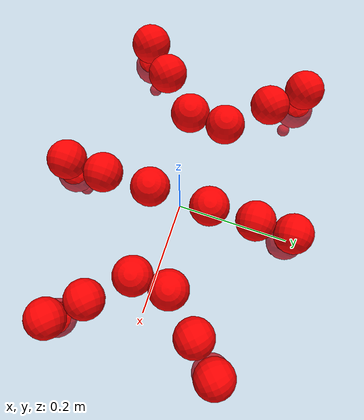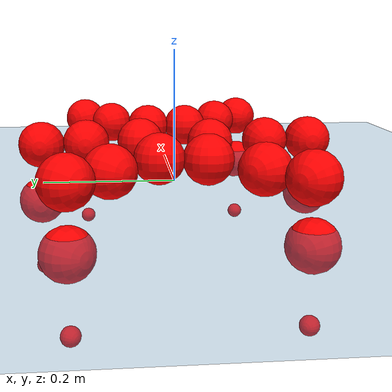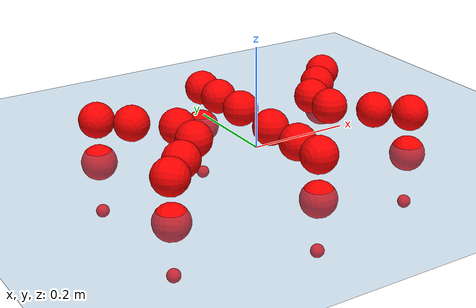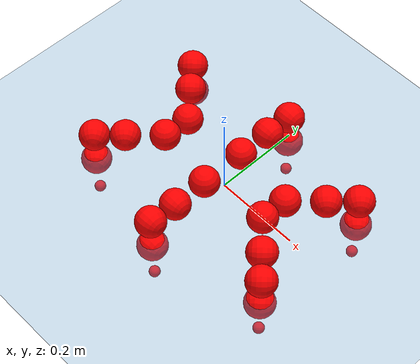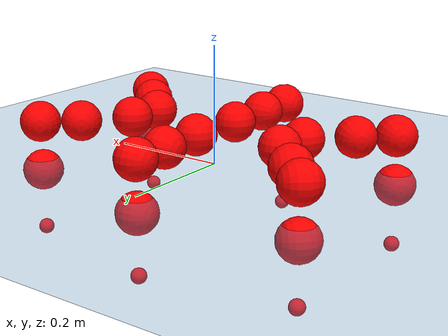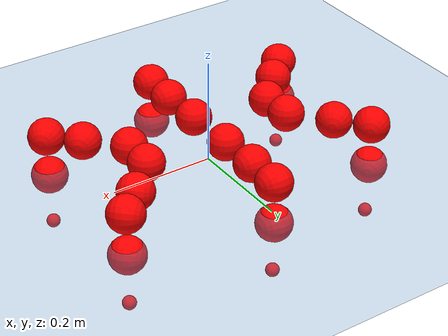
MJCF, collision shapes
<mujoco model="Golem">
  <compiler angle="radian" assetdir="assets" balanceinertia="true" inertiafromgeom="false"/>

  <option timestep="0.005" density="1.2" viscosity="2e-05"/>

  <size nkey="1"/>

  <visual>
    <quality shadowsize="8192"/>
    <map shadowclip="0.5"/>
  </visual>

  <default>
    <default class="/">
      <joint armature="0.01" damping="0.01" frictionloss="0.01"/>
      <geom contype="0" conaffinity="0" group="1" solref="-1000 -80"/>
      <site size="0.01 0.005 0.005" group="5"/>
      <general forcelimited="true" biastype="affine" gainprm="25" biasprm="0 -25 -0.5"/>
      <default class="visual">
        <geom type="mesh" group="2"/>
      </default>
      <default class="collision">
        <geom group="3"/>
      </default>
      <default class="foot">
        <geom size="0.01 0 0" condim="6" group="4" priority="1" solimp="0.015 1 0.01"/>
      </default>
      <default class="reward_collision_sphere">
        <geom group="5" rgba="1 0 0 1"/>
      </default>
    </default>
  </default>

  <asset>
    <texture type="skybox" colorspace="auto" name="//unnamed_texture_0" builtin="gradient" rgb1="0.95 0.95 0.95" rgb2="0.95 0.95 0.95" width="100" height="600"/>
    <texture type="2d" colorspace="auto" name="texplane" builtin="checker" rgb1="0.345 0.575 0.748" rgb2="0.345 0.575 0.748" markrgb="1 1 1" width="512" height="512"/>
    <material name="MatPlane" class="/" texture="texplane" texuniform="true" texrepeat="2 2" specular="0.9"/>
    <mesh name="body" class="/" file="body.stl" scale="0.001 0.001 0.001"/>
    <mesh name="coxa" class="/" file="coxa.stl" scale="0.001 0.001 0.001"/>
    <mesh name="femur" class="/" file="femur.stl" scale="0.001 0.001 0.001"/>
    <mesh name="tibia" class="/" file="tibia.stl" scale="0.001 0.001 0.001"/>
    <mesh name="tarsus" class="/" file="tarsus.stl" scale="0.001 0.001 0.001"/>
  </asset>

  <worldbody>
    <geom name="floor" class="/" size="100 100 0.125" type="plane" group="0" material="MatPlane"/>
    <light name="toplight_shadow" class="/" pos="0 0 5" dir="0.0990148 0.0990148 -0.990148" type="directional" ambient="0.04 0.04 0.04" diffuse="0.55 0.55 0.55" specular="0.12 0.12 0.12"/>
    <light name="toplight_fill" class="/" pos="0 0 5" dir="0.0990148 0.0990148 -0.990148" type="directional" castshadow="false" ambient="0.04 0.04 0.04" diffuse="0.3 0.3 0.3" specular="0.08 0.08 0.08"/>
    <body name="trunk" pos="-0.000985261 -0.000304154 0.00046532" quat="0.999999 -0.00099504 -0.000180229 -0.000451012">
      <inertial pos="0.000737343 0.00218553 -0.000947095" quat="1 -0.000339482 0.000428214 0.000182766" mass="2.32566" diaginertia="0.00811439 0.00102809 0.0089727"/>
      <joint name="//unnamed_joint_0" type="free"/>
      <geom name="//unnamed_geom_1" class="/" pos="0 0 0.0630346" quat="1 0 0 0" type="mesh" rgba="0.9 0.9 0.9 1" mesh="body"/>
      <site name="imu" class="/" pos="0.126751 0.00809407 0.100536" size="0.0086214"/>
      <camera name="track" class="/" pos="0 -1.27153 0" quat="0.707107 0.707107 0 0" mode="trackcom"/>
      <camera name="ego_camera" class="/" pos="0.125546 0 0.0984916" quat="-0.5 -0.5 0.5 0.5"/>
      <body name="coxa_RR" pos="-0.172222 -0.0517801 0.063013" quat="0.382048 0.000628329 -0.000242238 -0.924142">
        <inertial pos="0.000336951 -0.000606851 -0.000400503" quat="0.999926 -0.004972 -0.0104605 0.00379196" mass="0.135246" diaginertia="0.00858915 0.00105168 0.00962338"/>
        <joint name="coxa_joint_RR" class="/" pos="0 0 0" axis="0.0016409 -0.00212951 -0.999996" range="-3.13816 3.09017" armature="0.00964728" damping="0.00791351" frictionloss="0.00858615"/>
        <geom name="//unnamed_geom_2" class="/" type="mesh" rgba="0.2 0.2 0.2 1" mesh="coxa"/>
        <geom name="//unnamed_geom_3" class="reward_collision_sphere" size="0.0344856" pos="-0.0289722 0 0"/>
        <body name="femur_RR" pos="0.0579254 0.00216623 -0.00151471" quat="0.499947 -0.500078 0.499784 0.50019">
          <inertial pos="0.00203744 -0.000931694 0.000338672" quat="0.999953 0.00162655 0.00835567 -0.00468763" mass="0.129707" diaginertia="0.00842705 0.0010449 0.00929105"/>
          <joint name="femur_joint_RR" class="/" pos="0 0 0" axis="-0.000371735 0.00185155 -0.999998" stiffness="0.000174071" range="-3.13965 3.13257" armature="0.00870482" damping="0.00500784" frictionloss="0.00827405"/>
          <geom name="//unnamed_geom_4" class="/" type="mesh" rgba="0.9 0.9 0.9 1" mesh="femur"/>
          <geom name="//unnamed_geom_5" class="reward_collision_sphere" size="0.0344856"/>
          <body name="tibia_RR" pos="0.000925352 -0.0673819 0.000652835" quat="9.41085e-06 1 1.88343e-05 -1.49466e-07">
            <inertial pos="-0.00110975 0.000535728 0.000426121" quat="0.999993 -0.000493681 -0.00368812 -0.000730818" mass="0.131559" diaginertia="0.00828008 0.00102769 0.0093749"/>
            <joint name="tibia_joint_RR" class="/" pos="0 0 0" axis="-0.00811655 0.00273421 0.999963" range="-3.12218 3.14065" armature="0.0086213" damping="0.00220904" frictionloss="0.00856623"/>
            <geom name="//unnamed_geom_6" class="/" type="mesh" rgba="0.2 0.2 0.2 1" mesh="tibia"/>
            <geom name="//unnamed_geom_7" class="reward_collision_sphere" size="0.0344856"/>
            <body name="tarsus_RR" pos="0.0837475 0.00198815 0.000192012" quat="1 2.01668e-05 -2.22909e-05 2.42537e-05">
              <inertial pos="0.0594912 0.00017671 0.000838429" quat="0.500715 0.49867 0.500208 0.500404" mass="0.131462" diaginertia="0.00866365 0.00105892 0.00956313"/>
              <joint name="tarsus_joint_RR" class="/" pos="0 0 0" axis="-0.00167336 0.00228533 0.999996" range="-3.13772 3.13948" armature="0.00868275" damping="0.0422412" frictionloss="0.00802743"/>
              <geom name="//unnamed_geom_8" class="/" type="mesh" rgba="0.9 0.9 0.9 1" mesh="tarsus"/>
              <geom name="foot_1" class="foot" size="0.00883511" pos="0.108163 0 0" quat="0 -0.707107 0 0.707107"/>
              <geom name="//unnamed_geom_10" class="reward_collision_sphere" size="0.0344856"/>
              <geom name="//unnamed_geom_11" class="reward_collision_sphere" size="0.0129321" pos="0.103817 0 0"/>
              <site name="foot_1" class="foot" pos="0.108163 0 0" quat="0 -0.707107 0 0.707107" size="0.0086214"/>
            </body>
          </body>
        </body>
      </body>
      <body name="coxa_RM" pos="-0.00244764 -0.0831916 0.0607824" quat="0.707068 0.000415646 -0.000373606 -0.707145">
        <inertial pos="-0.00176321 0.0005213 0.00107078" quat="1 9.75052e-05 0.000320815 -0.000432017" mass="0.131757" diaginertia="0.00867992 0.00105973 0.00952113"/>
        <joint name="coxa_joint_RM" class="/" pos="0 0 0" axis="-0.00180957 -0.00520792 -0.999985" range="-3.11294 3.13935" armature="0.00902993" damping="0.01216" frictionloss="0.00870944"/>
        <geom name="//unnamed_geom_12" class="/" type="mesh" rgba="0.2 0.2 0.2 1" mesh="coxa"/>
        <geom name="//unnamed_geom_13" class="reward_collision_sphere" size="0.0344856" pos="-0.0289722 0 0"/>
        <body name="femur_RM" pos="0.0560053 0.00173436 0.0007951" quat="0.499985 -0.499959 0.499955 0.500101">
          <inertial pos="0.000354517 -0.00019904 -0.000973104" quat="0.999932 0.00327987 0.00274638 0.0108816" mass="0.123337" diaginertia="0.00820361 0.00101139 0.00907293"/>
          <joint name="femur_joint_RM" class="/" pos="0 0 0" axis="0.000859616 -0.000678948 -0.999999" range="-3.18765 3.15843" armature="0.00885434" damping="0.00866614" frictionloss="0.00861546"/>
          <geom name="//unnamed_geom_14" class="/" type="mesh" rgba="0.9 0.9 0.9 1" mesh="femur"/>
          <geom name="//unnamed_geom_15" class="reward_collision_sphere" size="0.0344856"/>
          <body name="tibia_RM" pos="-0.000635838 -0.0668944 -0.00173036" quat="-0.000859402 0.999999 -8.1761e-05 0.00076774">
            <inertial pos="-0.000931635 -0.00104317 0.0010171" quat="0.999982 0.00150056 -0.00384995 -0.00425623" mass="0.127463" diaginertia="0.00833466 0.00100751 0.00893941"/>
            <joint name="tibia_joint_RM" class="/" pos="0 0 0" axis="6.00406e-06 0.0017147 0.999999" range="-3.13758 3.14322" armature="0.00859524" damping="0" frictionloss="0.00902019"/>
            <geom name="//unnamed_geom_16" class="/" type="mesh" rgba="0.2 0.2 0.2 1" mesh="tibia"/>
            <geom name="//unnamed_geom_17" class="reward_collision_sphere" size="0.0344856"/>
            <body name="tarsus_RM" pos="0.0855138 0.000413694 -0.000560462" quat="1 0.000103129 -0.0002983 0.00090651">
              <inertial pos="0.0582647 0.000346074 0.000272714" quat="0.497192 0.502404 0.497795 0.502584" mass="0.127322" diaginertia="0.0083935 0.00103127 0.00919627"/>
              <joint name="tarsus_joint_RM" class="/" pos="0 0 0" axis="-0.00593614 0.00623213 0.999963" range="-3.15559 3.18692" armature="0.00861905" damping="0.00714248" frictionloss="0.00758569"/>
              <geom name="//unnamed_geom_18" class="/" type="mesh" rgba="0.9 0.9 0.9 1" mesh="tarsus"/>
              <geom name="foot_2" class="foot" size="0.00828323" pos="0.108163 0 0" quat="0 -0.707107 0 0.707107"/>
              <geom name="//unnamed_geom_20" class="reward_collision_sphere" size="0.0344856"/>
              <geom name="//unnamed_geom_21" class="reward_collision_sphere" size="0.0129321" pos="0.103817 0 0"/>
              <site name="foot_2" class="foot" pos="0.108163 0 0" quat="0 -0.707107 0 0.707107" size="0.0086214"/>
            </body>
          </body>
        </body>
      </body>
      <body name="coxa_RF" pos="0.169832 -0.0512987 0.0631889" quat="0.924111 -0.000589315 0.000291439 -0.382123">
        <inertial pos="0.00223758 0.00215045 5.21564e-05" quat="1 -0.000674048 0.000236328 -0.000301425" mass="0.128075" diaginertia="0.00849459 0.00103572 0.00926245"/>
        <joint name="coxa_joint_RF" class="/" pos="0 0 0" axis="-0.000436228 -0.000494985 -1" range="-3.14992 3.09533" armature="0.00904926" damping="0.0142859" frictionloss="0.00871352"/>
        <geom name="//unnamed_geom_22" class="/" type="mesh" rgba="0.2 0.2 0.2 1" mesh="coxa"/>
        <geom name="//unnamed_geom_23" class="reward_collision_sphere" size="0.0344856" pos="-0.0289722 0 0"/>
        <body name="femur_RF" pos="0.0570649 -0.000501615 -0.000190211" quat="0.499633 -0.500613 0.499585 0.500169">
          <inertial pos="-0.00019513 -0.000330759 0.00243593" quat="0.999964 -0.00817776 0.000765963 0.00216041" mass="0.125149" diaginertia="0.00814224 0.00100785 0.00876057"/>
          <joint name="femur_joint_RF" class="/" pos="0 0 0" axis="-0.0119766 -0.000435314 -0.999928" range="-3.14849 3.13887" armature="0.00973888" damping="0.00863892" frictionloss="0.00913218"/>
          <geom name="//unnamed_geom_24" class="/" type="mesh" rgba="0.9 0.9 0.9 1" mesh="femur"/>
          <geom name="//unnamed_geom_25" class="reward_collision_sphere" size="0.0344856"/>
          <body name="tibia_RF" pos="0.000281933 -0.0684723 -0.000826238" quat="-0.000216941 1 7.15417e-05 -7.59118e-06">
            <inertial pos="7.78555e-05 0.000334861 0.000323618" quat="0.999978 -0.00396526 -0.00289442 -0.00446223" mass="0.126863" diaginertia="0.00824547 0.00101909 0.00939317"/>
            <joint name="tibia_joint_RF" class="/" pos="0 0 0" axis="-0.000812821 -0.00215563 0.999997" range="-3.13738 3.18105" armature="0.0087003" damping="0.00737378" frictionloss="0.00819063"/>
            <geom name="//unnamed_geom_26" class="/" type="mesh" rgba="0.2 0.2 0.2 1" mesh="tibia"/>
            <geom name="//unnamed_geom_27" class="reward_collision_sphere" size="0.0344856"/>
            <body name="tarsus_RF" pos="0.0836966 -0.000465761 0.00110495" quat="0.999999 0.00107757 0.000142944 -0.000346134">
              <inertial pos="0.0579569 -6.55846e-06 0.000121761" quat="0.500533 0.501665 0.498477 0.499319" mass="0.127908" diaginertia="0.00834117 0.00102818 0.00901717"/>
              <joint name="tarsus_joint_RF" class="/" pos="0 0 0" axis="0.00660566 0.00459691 0.999968" range="-3.13886 3.12788" armature="0.00858326" damping="0.0123074" frictionloss="0.00873849"/>
              <geom name="//unnamed_geom_28" class="/" type="mesh" rgba="0.9 0.9 0.9 1" mesh="tarsus"/>
              <geom name="foot_3" class="foot" size="0.00907007" pos="0.108163 0 0" quat="0 -0.707107 0 0.707107"/>
              <geom name="//unnamed_geom_30" class="reward_collision_sphere" size="0.0344856"/>
              <geom name="//unnamed_geom_31" class="reward_collision_sphere" size="0.0129321" pos="0.103817 0 0"/>
              <site name="foot_3" class="foot" pos="0.108163 0 0" quat="0 -0.707107 0 0.707107" size="0.0086214"/>
            </body>
          </body>
        </body>
      </body>
      <body name="coxa_LR" pos="-0.170264 0.0539262 0.0647358" quat="0.383358 -2.71323e-05 0.000516423 0.9236">
        <inertial pos="0.000757691 -0.000439468 -0.000527366" quat="1 -0.000231301 8.31732e-05 1.52618e-06" mass="0.129139" diaginertia="0.00822376 0.00104017 0.00899731"/>
        <joint name="coxa_joint_LR" class="/" pos="0 0 0" axis="0.00920501 -0.00890286 -0.999918" range="-3.10811 3.14018" armature="0.00886003" damping="0.00594414" frictionloss="0.00851023"/>
        <geom name="//unnamed_geom_32" class="/" type="mesh" rgba="0.2 0.2 0.2 1" mesh="coxa"/>
        <geom name="//unnamed_geom_33" class="reward_collision_sphere" size="0.0344856" pos="-0.0289722 0 0"/>
        <body name="femur_LR" pos="0.0602416 -0.00204645 -0.00211525" quat="0.499782 -0.499901 0.499901 0.500417">
          <inertial pos="-0.000609091 -0.000285169 -0.000649535" quat="0.999992 0.00376216 0.000254471 -0.00139862" mass="0.126645" diaginertia="0.0083676 0.00104062 0.0093001"/>
          <joint name="femur_joint_LR" class="/" pos="0 0 0" axis="-0.000454265 -0.00497528 0.999988" range="-3.18 3.17736" armature="0.00861257" damping="0" frictionloss="0.00906143"/>
          <geom name="//unnamed_geom_34" class="/" type="mesh" rgba="0.9 0.9 0.9 1" mesh="femur"/>
          <geom name="//unnamed_geom_35" class="reward_collision_sphere" size="0.0344856"/>
          <body name="tibia_LR" pos="0.000520005 -0.0695053 -0.00192281" quat="9.96864e-05 1 0.000404916 -0.000245857">
            <inertial pos="-0.00262495 0.00116332 -0.00195086" quat="1 0.000175064 -1.39194e-05 0.00011089" mass="0.128034" diaginertia="0.0083764 0.00106199 0.00920585"/>
            <joint name="tibia_joint_LR" class="/" pos="0 0 0" axis="-0.00102407 0.00176814 -0.999998" range="-3.09788 3.16502" armature="0.00875819" damping="0.0024565" frictionloss="0.00903279"/>
            <geom name="//unnamed_geom_36" class="/" type="mesh" rgba="0.2 0.2 0.2 1" mesh="tibia"/>
            <geom name="//unnamed_geom_37" class="reward_collision_sphere" size="0.0344856"/>
            <body name="tarsus_LR" pos="0.0866263 0.000808437 0.000446519" quat="1 -0.000111863 -0.000183611 -5.14268e-05">
              <inertial pos="0.0584086 -0.000157862 -0.000858096" quat="0.499242 0.499702 0.501937 0.499114" mass="0.132161" diaginertia="0.00860605 0.00107187 0.00948165"/>
              <joint name="tarsus_joint_LR" class="/" pos="0 0 0" axis="0.00513875 0.0111312 -0.999925" stiffness="0.00115208" range="-3.13629 3.11586" armature="0.00877468" damping="0.0266899" frictionloss="0.00914571"/>
              <geom name="//unnamed_geom_38" class="/" type="mesh" rgba="0.9 0.9 0.9 1" mesh="tarsus"/>
              <geom name="foot_4" class="foot" size="0.00821518" pos="0.108163 0 0" quat="0.707107 0 -0.707107 0"/>
              <geom name="//unnamed_geom_40" class="reward_collision_sphere" size="0.0344856"/>
              <geom name="//unnamed_geom_41" class="reward_collision_sphere" size="0.0129321" pos="0.103817 0 0"/>
              <site name="foot_4" class="foot" pos="0.108163 0 0" quat="0.707107 0 -0.707107 0" size="0.0086214"/>
            </body>
          </body>
        </body>
      </body>
      <body name="coxa_LM" pos="-0.00172051 0.0813948 0.0629794" quat="0.70703 4.2813e-05 -0.000142527 0.707184">
        <inertial pos="0.00244481 0.00227652 -0.000258773" quat="1 4.23222e-05 0.000105147 9.62032e-05" mass="0.127785" diaginertia="0.00827132 0.0010356 0.00922346"/>
        <joint name="coxa_joint_LM" class="/" pos="0 0 0" axis="0.00211129 0.000696436 -0.999998" range="-3.1328 3.13252" armature="0.00934066" damping="0.00635856" frictionloss="0.00868996"/>
        <geom name="//unnamed_geom_42" class="/" type="mesh" rgba="0.2 0.2 0.2 1" mesh="coxa"/>
        <geom name="//unnamed_geom_43" class="reward_collision_sphere" size="0.0344856" pos="-0.0289722 0 0"/>
        <body name="femur_LM" pos="0.0524829 0.000955424 -0.000908792" quat="0.499658 -0.501004 0.499318 0.500019">
          <inertial pos="-0.000712743 -2.4807e-05 0.000467674" quat="0.99998 0.000888751 0.0017307 -0.00608336" mass="0.126559" diaginertia="0.00842992 0.0010175 0.00905764"/>
          <joint name="femur_joint_LM" class="/" pos="0 0 0" axis="-0.0012487 -0.00133904 0.999998" range="-3.15684 3.13903" armature="0.00763059" damping="0" frictionloss="0.00885665"/>
          <geom name="//unnamed_geom_44" class="/" type="mesh" rgba="0.9 0.9 0.9 1" mesh="femur"/>
          <geom name="//unnamed_geom_45" class="reward_collision_sphere" size="0.0344856"/>
          <body name="tibia_LM" pos="0.00234081 -0.0665379 -0.000625656" quat="-5.37226e-05 1 -8.62721e-06 7.32506e-05">
            <inertial pos="-0.00131717 -0.000716599 -0.000300528" quat="0.999988 -0.00462846 0.00122942 0.00132959" mass="0.125047" diaginertia="0.00831469 0.00105129 0.00943176"/>
            <joint name="tibia_joint_LM" class="/" pos="0 0 0" axis="-0.000522089 -0.00318015 -0.999995" stiffness="0.00039198" range="-3.12088 3.15992" armature="0.00863262" damping="0" frictionloss="0.00849791"/>
            <geom name="//unnamed_geom_46" class="/" type="mesh" rgba="0.2 0.2 0.2 1" mesh="tibia"/>
            <geom name="//unnamed_geom_47" class="reward_collision_sphere" size="0.0344856"/>
            <body name="tarsus_LM" pos="0.0852482 0.00153134 -0.0017081" quat="1 -2.55539e-06 7.67884e-06 2.62567e-07">
              <inertial pos="0.0594504 -0.00067962 -7.33142e-05" quat="0.499504 0.500294 0.500335 0.499867" mass="0.135075" diaginertia="0.00854912 0.00106804 0.00927476"/>
              <joint name="tarsus_joint_LM" class="/" pos="0 0 0" axis="0.000366462 -0.005141 -0.999987" stiffness="0.00723675" range="-3.13823 3.12476" armature="0.00867889" damping="0.0163997" frictionloss="0.00865546"/>
              <geom name="//unnamed_geom_48" class="/" type="mesh" rgba="0.9 0.9 0.9 1" mesh="tarsus"/>
              <geom name="foot_5" class="foot" size="0.00836526" pos="0.108163 0 0" quat="0.707107 0 -0.707107 0"/>
              <geom name="//unnamed_geom_50" class="reward_collision_sphere" size="0.0344856"/>
              <geom name="//unnamed_geom_51" class="reward_collision_sphere" size="0.0129321" pos="0.103817 0 0"/>
              <site name="foot_5" class="foot" pos="0.108163 0 0" quat="0.707107 0 -0.707107 0" size="0.0086214"/>
            </body>
          </body>
        </body>
      </body>
      <body name="coxa_LF" pos="0.172317 0.0530024 0.0636353" quat="0.9238 8.96221e-05 -0.00014771 0.382875">
        <inertial pos="0.000135072 -0.000845666 9.52862e-05" quat="1 -0.000219848 8.01512e-05 -0.000225964" mass="0.125311" diaginertia="0.00828599 0.00103905 0.00926874"/>
        <joint name="coxa_joint_LF" class="/" pos="0 0 0" axis="0.000775293 0.00622606 -0.99998" range="-3.12906 3.15034" armature="0.00830338" damping="0.00502188" frictionloss="0.00868926"/>
        <geom name="//unnamed_geom_52" class="/" type="mesh" rgba="0.2 0.2 0.2 1" mesh="coxa"/>
        <geom name="//unnamed_geom_53" class="reward_collision_sphere" size="0.0344856" pos="-0.0289722 0 0"/>
        <body name="femur_LF" pos="0.0574002 0.00279256 -0.0025771" quat="0.500454 -0.49983 0.500025 0.499691">
          <inertial pos="-0.00177301 -0.000696162 0.00094224" quat="1 0.000129066 -0.000761218 0.000289111" mass="0.129394" diaginertia="0.00829634 0.00102084 0.0092072"/>
          <joint name="femur_joint_LF" class="/" pos="0 0 0" axis="-0.010207 0.00112197 0.999947" range="-3.14161 3.09942" armature="0.00803354" damping="0.00210251" frictionloss="0.00831922"/>
          <geom name="//unnamed_geom_54" class="/" type="mesh" rgba="0.9 0.9 0.9 1" mesh="femur"/>
          <geom name="//unnamed_geom_55" class="reward_collision_sphere" size="0.0344856"/>
          <body name="tibia_LF" pos="-0.00173292 -0.0688153 0.000763642" quat="4.3532e-05 1 0.000277676 0.000168117">
            <inertial pos="-0.00105254 -0.000268269 -0.000100777" quat="0.999948 -0.0039603 -0.00682808 0.00643884" mass="0.126245" diaginertia="0.00837258 0.00102538 0.00919464"/>
            <joint name="tibia_joint_LF" class="/" pos="0 0 0" axis="-0.00468918 -0.00145234 -0.999988" range="-3.14147 3.14193" armature="0.0075684" damping="0.00113538" frictionloss="0.00858763"/>
            <geom name="//unnamed_geom_56" class="/" type="mesh" rgba="0.2 0.2 0.2 1" mesh="tibia"/>
            <geom name="//unnamed_geom_57" class="reward_collision_sphere" size="0.0344856"/>
            <body name="tarsus_LF" pos="0.0853073 -0.00042689 0.000440907" quat="0.999999 -0.0011061 -0.000502733 0.000189633">
              <inertial pos="0.0595657 -0.00151806 0.00055199" quat="0.498364 0.501557 0.499924 0.500151" mass="0.126942" diaginertia="0.00837031 0.00102283 0.00915976"/>
              <joint name="tarsus_joint_LF" class="/" pos="0 0 0" axis="-0.00239108 0.00980319 -0.999949" stiffness="0.00234764" range="-3.10467 3.14382" armature="0.0088177" damping="0.0180578" frictionloss="0.00862826"/>
              <geom name="//unnamed_geom_58" class="/" type="mesh" rgba="0.9 0.9 0.9 1" mesh="tarsus"/>
              <geom name="foot_6" class="foot" size="0.00807307" pos="0.108163 0 0" quat="0.707107 0 -0.707107 0"/>
              <geom name="//unnamed_geom_60" class="reward_collision_sphere" size="0.0344856"/>
              <geom name="//unnamed_geom_61" class="reward_collision_sphere" size="0.0129321" pos="0.103817 0 0"/>
              <site name="foot_6" class="foot" pos="0.108163 0 0" quat="0.707107 0 -0.707107 0" size="0.0086214"/>
            </body>
          </body>
        </body>
      </body>
    </body>
  </worldbody>

  <contact>
    <pair class="/" geom1="floor" geom2="foot_1" name="//unnamed_contact_0"/>
    <pair class="/" geom1="floor" geom2="foot_2" name="//unnamed_contact_1"/>
    <pair class="/" geom1="floor" geom2="foot_3" name="//unnamed_contact_2"/>
    <pair class="/" geom1="floor" geom2="foot_4" name="//unnamed_contact_3"/>
    <pair class="/" geom1="floor" geom2="foot_5" name="//unnamed_contact_4"/>
    <pair class="/" geom1="floor" geom2="foot_6" name="//unnamed_contact_5"/>
  </contact>

  <actuator>
    <general name="coxa_joint_RR" class="/" joint="coxa_joint_RR" forcerange="-6.40536 6.40536" gainprm="20.6945" biasprm="0 -20.6945 -0.439876"/>
    <general name="femur_joint_RR" class="/" joint="femur_joint_RR" forcerange="-6.2996 6.2996" gainprm="20.6945" biasprm="0 -20.6945 -0.439876"/>
    <general name="tibia_joint_RR" class="/" joint="tibia_joint_RR" forcerange="-6.37908 6.37908" gainprm="20.6945" biasprm="0 -20.6945 -0.439876"/>
    <general name="tarsus_joint_RR" class="/" joint="tarsus_joint_RR" forcerange="-6.52191 6.52191" gainprm="20.6945" biasprm="0 -20.6945 -0.439876"/>
    <general name="coxa_joint_RM" class="/" joint="coxa_joint_RM" forcerange="-6.53531 6.53531" gainprm="20.6945" biasprm="0 -20.6945 -0.439876"/>
    <general name="femur_joint_RM" class="/" joint="femur_joint_RM" forcerange="-5.98881 5.98881" gainprm="20.6945" biasprm="0 -20.6945 -0.439876"/>
    <general name="tibia_joint_RM" class="/" joint="tibia_joint_RM" forcerange="-6.31666 6.31666" gainprm="20.6945" biasprm="0 -20.6945 -0.439876"/>
    <general name="tarsus_joint_RM" class="/" joint="tarsus_joint_RM" forcerange="-6.06145 6.06145" gainprm="20.6945" biasprm="0 -20.6945 -0.439876"/>
    <general name="coxa_joint_RF" class="/" joint="coxa_joint_RF" forcerange="-5.93036 5.93036" gainprm="20.6945" biasprm="0 -20.6945 -0.439876"/>
    <general name="femur_joint_RF" class="/" joint="femur_joint_RF" forcerange="-6.04205 6.04205" gainprm="20.6945" biasprm="0 -20.6945 -0.439876"/>
    <general name="tibia_joint_RF" class="/" joint="tibia_joint_RF" forcerange="-6.49982 6.49982" gainprm="20.6945" biasprm="0 -20.6945 -0.439876"/>
    <general name="tarsus_joint_RF" class="/" joint="tarsus_joint_RF" forcerange="-6.12536 6.12536" gainprm="20.6945" biasprm="0 -20.6945 -0.439876"/>
    <general name="coxa_joint_LR" class="/" joint="coxa_joint_LR" forcerange="-6.2142 6.2142" gainprm="20.6945" biasprm="0 -20.6945 -0.439876"/>
    <general name="femur_joint_LR" class="/" joint="femur_joint_LR" forcerange="-6.33748 6.33748" gainprm="20.6945" biasprm="0 -20.6945 -0.439876"/>
    <general name="tibia_joint_LR" class="/" joint="tibia_joint_LR" forcerange="-5.78264 5.78264" gainprm="20.6945" biasprm="0 -20.6945 -0.439876"/>
    <general name="tarsus_joint_LR" class="/" joint="tarsus_joint_LR" forcerange="-6.84145 6.84145" gainprm="20.6945" biasprm="0 -20.6945 -0.439876"/>
    <general name="coxa_joint_LM" class="/" joint="coxa_joint_LM" forcerange="-6.20965 6.20965" gainprm="20.6945" biasprm="0 -20.6945 -0.439876"/>
    <general name="femur_joint_LM" class="/" joint="femur_joint_LM" forcerange="-6.24113 6.24113" gainprm="20.6945" biasprm="0 -20.6945 -0.439876"/>
    <general name="tibia_joint_LM" class="/" joint="tibia_joint_LM" forcerange="-6.27089 6.27089" gainprm="20.6945" biasprm="0 -20.6945 -0.439876"/>
    <general name="tarsus_joint_LM" class="/" joint="tarsus_joint_LM" forcerange="-6.49238 6.49238" gainprm="20.6945" biasprm="0 -20.6945 -0.439876"/>
    <general name="coxa_joint_LF" class="/" joint="coxa_joint_LF" forcerange="-6.241 6.241" gainprm="20.6945" biasprm="0 -20.6945 -0.439876"/>
    <general name="femur_joint_LF" class="/" joint="femur_joint_LF" forcerange="-6.29148 6.29148" gainprm="20.6945" biasprm="0 -20.6945 -0.439876"/>
    <general name="tibia_joint_LF" class="/" joint="tibia_joint_LF" forcerange="-6.0602 6.0602" gainprm="20.6945" biasprm="0 -20.6945 -0.439876"/>
    <general name="tarsus_joint_LF" class="/" joint="tarsus_joint_LF" forcerange="-6.18155 6.18155" gainprm="20.6945" biasprm="0 -20.6945 -0.439876"/>
  </actuator>

  <sensor>
    <gyro site="imu" name="imu_angular_velocity"/>
    <velocimeter site="imu" name="imu_linear_velocity"/>
    <framelinvel objtype="site" objname="foot_1" name="foot_1_global_linear_velocity"/>
    <framelinvel objtype="site" objname="foot_2" name="foot_2_global_linear_velocity"/>
    <framelinvel objtype="site" objname="foot_3" name="foot_3_global_linear_velocity"/>
    <framelinvel objtype="site" objname="foot_4" name="foot_4_global_linear_velocity"/>
    <framelinvel objtype="site" objname="foot_5" name="foot_5_global_linear_velocity"/>
    <framelinvel objtype="site" objname="foot_6" name="foot_6_global_linear_velocity"/>
  </sensor>

  <keyframe>
    <key name="home" qpos="0 0 0.1457 1 0 0 0 0 0 0 0 0 0 0 0 0 0 0 0 0 0 0 0 0 0 0 0 0 0 0 0"/>
  </keyframe>
</mujoco>
